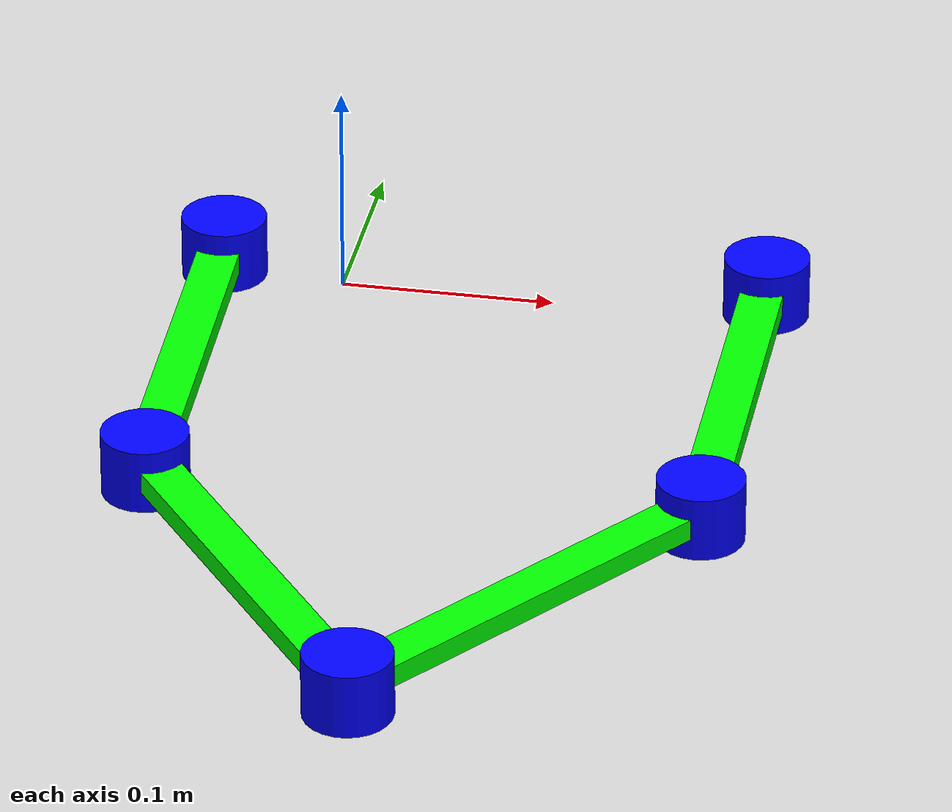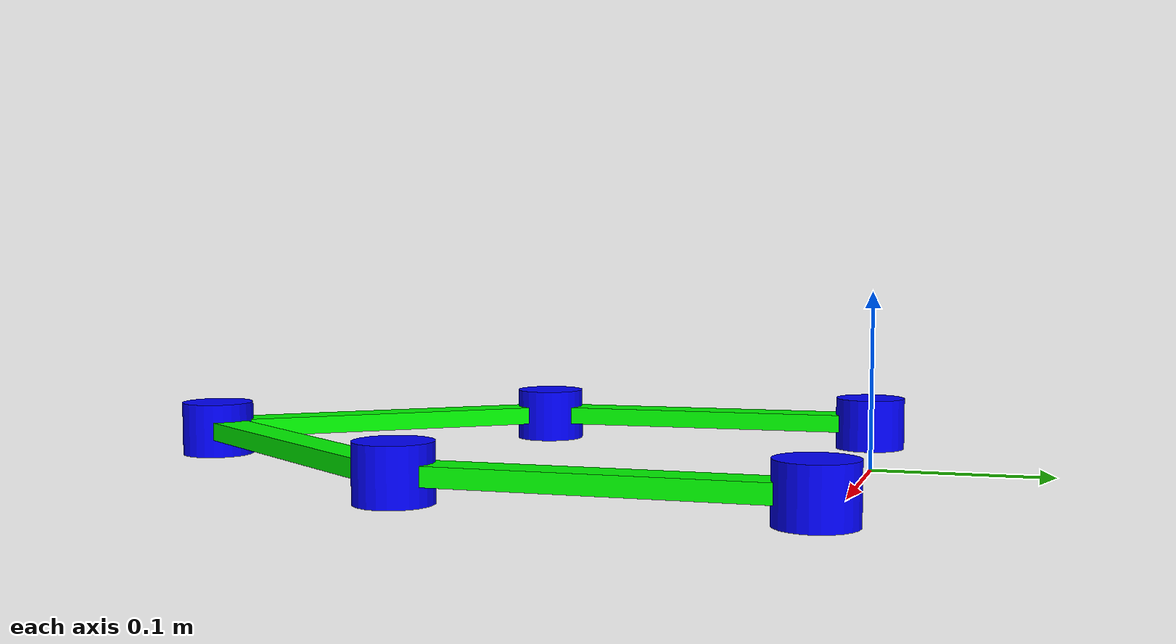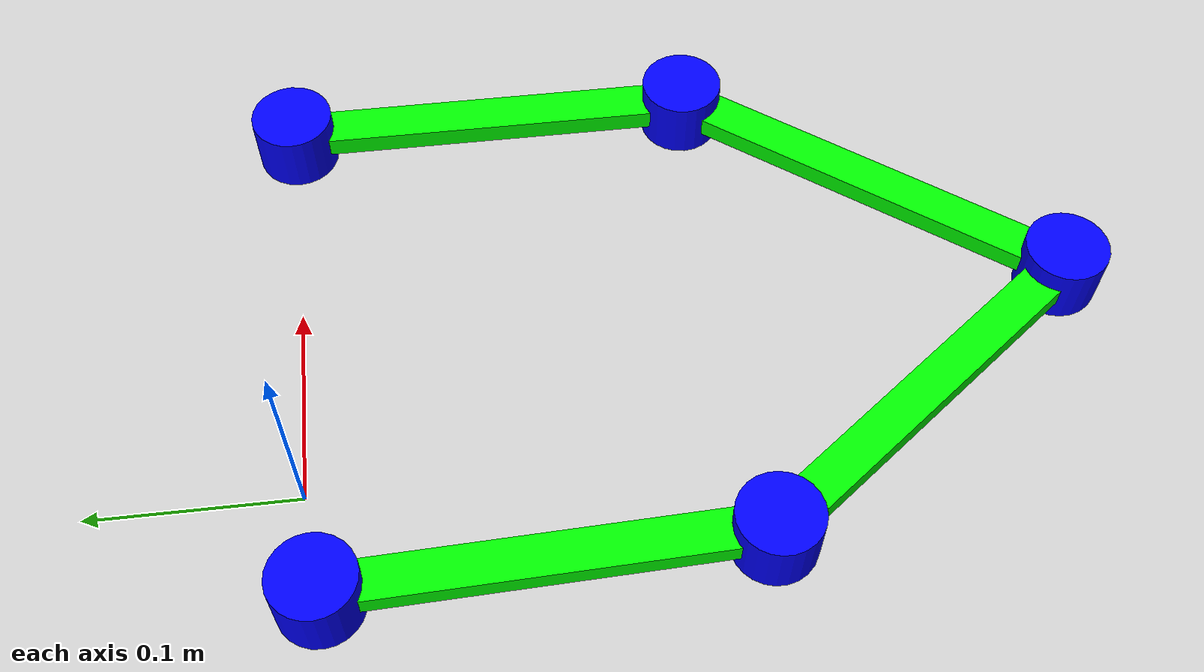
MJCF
<mujoco>
    <actuator>
        <motor name="actuator_motor1" joint="hinge_2" gear="100"/>
        <motor name="actuator_moto2" joint="hinge_4" gear="100"/>
    </actuator>

    <asset>
        <material name="blue_" rgba="0 0 1 1" />
        <material name="green" rgba="0 1 0 1" />
        <material name="red__" rgba="1 0 0 1" />
        <material name="white" rgba="1 1 1 1" />
    </asset>

    <worldbody>
       <geom type="plane" size="10 10 0.1" pos="0 0 -5" rgba=".9 0 0 1" />
        <light diffuse=".5 .5 .5" pos="0 0 3" dir="0 0 -1" />
        <body name="joint_1" pos="0.2 0 0.02">
            <joint name="hinge_1" type="hinge" axis="0 0 1" pos="0 0 0" />
            <geom type="cylinder" size="0.02 0.015" material="blue_" mass="0.06" />
            <body name="link_1" pos="0 -0.1 0"  euler="0 0 -90">
                <geom type="box" size="0.1 0.01 0.005" material="green" mass="0.02" />
                <body name="joint_2" pos="0.1 0 0" euler="0 0 0">
                    <joint name="hinge_2" type="hinge" axis="0 0 1" pos="0 0 0" />
                    <geom type="cylinder" size="0.02 0.015" material="blue_" mass="0.06" />
                    <body name="link_2" pos="0.0875 -0.065 0" euler="0 0 -37">
                        <geom type="box" size="0.1 0.01 0.005" material="green" mass="0.02" contype="0" conaffinity="0"/>
                        <body name="end_effector" pos="0.1 0 0">
                            <geom type="cylinder" size="0.02 0.015" material="blue_" mass="0.06" />
                            <body name="link_4" pos="-0.0275 -0.1 0" euler="0 0 74">
                                <geom type="box" size="0.1 0.01 0.005" material="green" mass="0.02" contype="0" conaffinity="0"/>
                                <body name="joint_5" pos="-0.1 0 0" euler="0 0 0">
                                    <joint name="hinge_3" type="hinge" axis="0 0 1" pos="0 0 0" />
                                    <geom type="cylinder" size="0.02 0.015" material="blue_" mass="0.06" />
                                    <body name="link_3" pos="-0.08 0.057 0" euler="0 0 -35">
                                        <geom type="box" size="0.1 0.01 0.005" material="green" mass="0.02" />
                                        <body name="joint_3" pos="-0.1 0 0">
                                            <joint name="hinge_4" type="hinge" axis="0 0 1" pos="0 0 0" />
                                            <geom type="cylinder" size="0.02 0.015" material="blue_" mass="0.06" />
                                        </body>
                                    </body>
                                </body>
                            </body>
                        </body>
                    </body>
                </body>
            </body>
        </body>
    </worldbody>

    <equality>
        <connect name="kinematic_link" active="true" body1="joint_3" anchor="0 0 0"/>
    </equality>

</mujoco>
